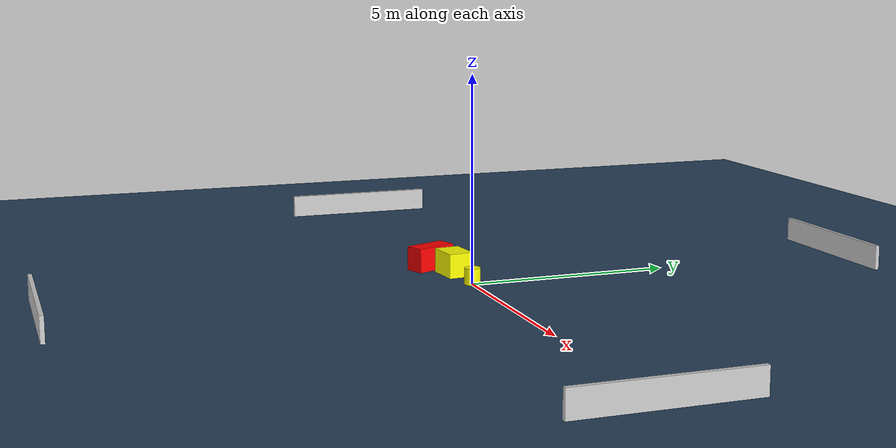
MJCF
<?xml version="1.0" ?>
<mujoco model="generated_environment">
  <option timestep="0.01" integrator="RK4" cone="elliptic"/>
  <default>
    <geom density="1"/>
  </default>
  <asset>
    <texture builtin="gradient" height="3072" name="skybox" rgb1="0.3 0.5 0.7" rgb2="0 0 0" type="skybox" width="512"/>
    <texture builtin="checker" height="300" name="groundplane" rgb1="0.2 0.3 0.4" rgb2="0.1 0.2 0.3" type="2d" width="300"/>
    <material name="groundplane" reflectance="0.2" texrepeat="5 5" texture="groundplane"/>
  </asset>
  <worldbody>
    <light dir="0 0 -1" directional="true" pos="0 0 1.5"/>
    <geom condim="3" friction="0.5 0.005 0.001" material="groundplane" name="floor" pos="0 0 0" size="0 0 0.05" type="plane"/>
    <body name="walls">
      <geom name="wall_1" condim="4" pos="-10.0 0.0 0.3" rgba="0.800000011920929 0.800000011920929 0.800000011920929 1.0" size="0.05 2.0 0.3" type="box"/>
      <geom name="wall_2" condim="4" pos="10.0 0.0 0.3" rgba="0.800000011920929 0.800000011920929 0.800000011920929 1.0" size="0.05 2.0 0.3" type="box"/>
      <geom name="wall_3" condim="4" pos="0.0 -10.0 0.3" rgba="0.800000011920929 0.800000011920929 0.800000011920929 1.0" size="2.0 0.05 0.3" type="box"/>
      <geom name="wall_4" condim="4" pos="0.0 10.0 0.3" rgba="0.800000011920929 0.800000011920929 0.800000011920929 1.0" size="2.0 0.05 0.3" type="box"/>
    </body>
    <body name="robot">
      <joint name="joint_x" type="slide" pos="0 0 0" axis="1 0 0"/>
      <joint name="joint_y" type="slide" pos="0 0 0" axis="0 1 0"/>
      <geom name="robot" type="cylinder" pos="0.0 0.0 0.2" size="0.2 0.2 0.0" mass="5.0" friction="1.0 0.005 0.0001" condim="4" rgba="1.0 1.0 0.0 1.0"/>
    </body>
    <body name="obstacle_1_movable">
      <geom name="obstacle_1_movable" condim="4" pos="-1.125327844120205 -0.07076398868772613 0.3" euler="0 0 5.835779730626882" friction="0.0 0.005 0.001" rgba="1.0 1.0 0.0 1.0" size="0.4295394417689089 0.30941834601077606 0.3" type="box" mass="0.1"/>
      <joint type="free"/>
    </body>
    <body name="obstacle_2_static">
      <geom name="obstacle_2_static" condim="4" pos="-1.9329515980446652 -0.40886401048878607 0.3" euler="0 0 292.52801480871943" friction="0.0 0.005 0.001" rgba="1.0 0.0 0.0 1.0" size="0.5349281589670454 0.24742866960002974 0.3" type="box"/>
    </body>
  </worldbody>
  <actuator>
    <motor name="actuator_x" joint="joint_x" gear="1" ctrlrange="-1 1"/>
    <motor name="actuator_y" joint="joint_y" gear="1" ctrlrange="-1 1"/>
  </actuator>
</mujoco>
